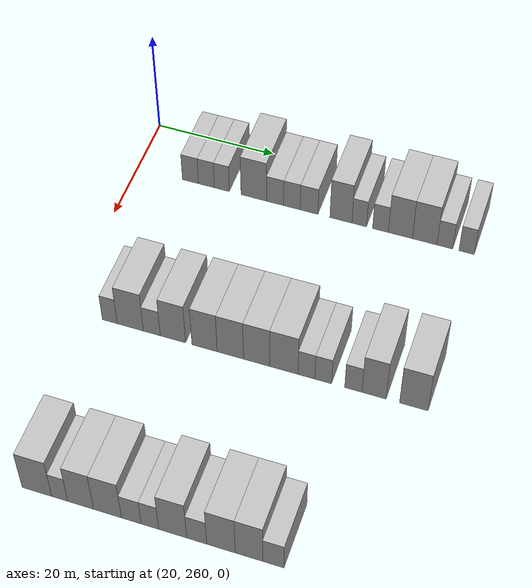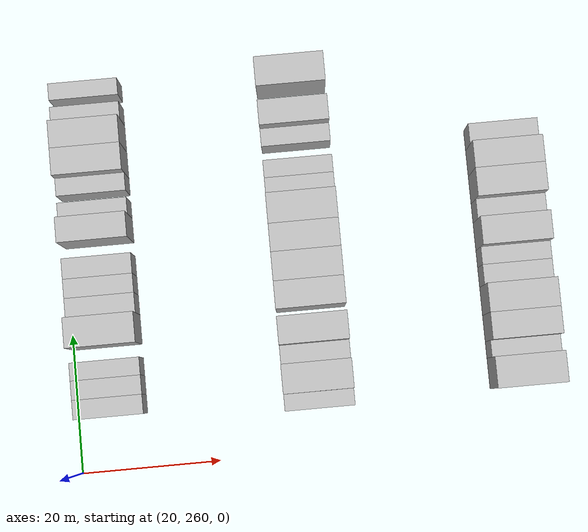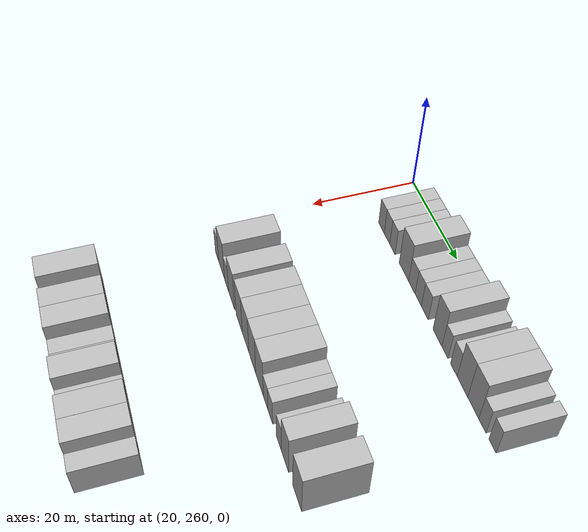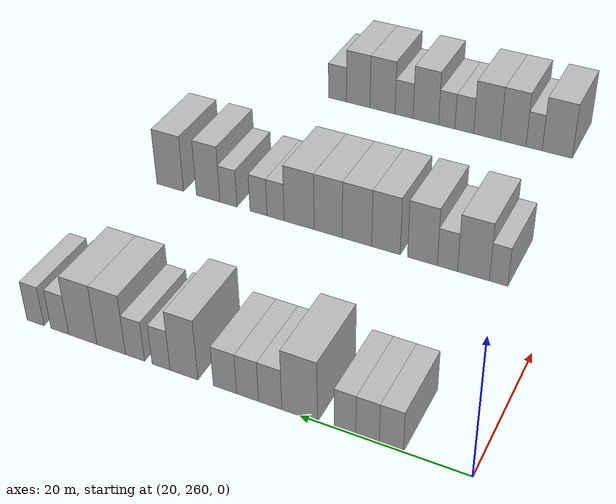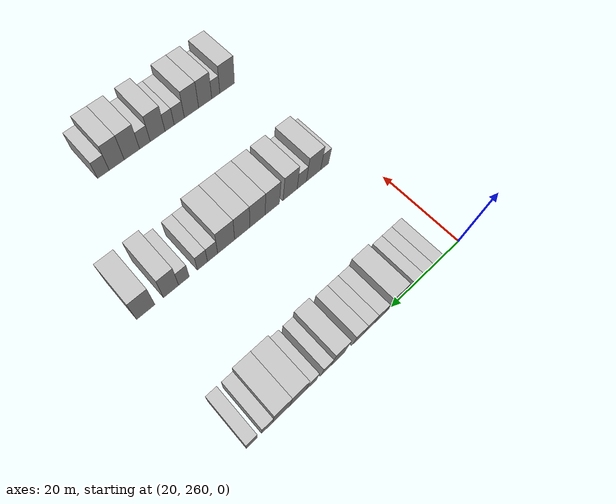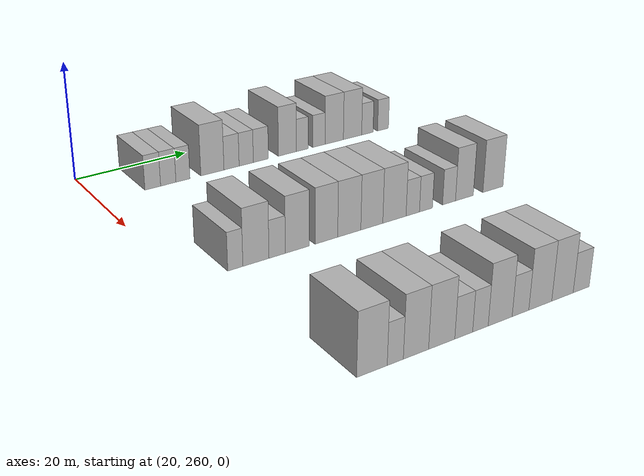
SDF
<sdf version="1.6">
 <world name="default">
  <model name="building_188">
   <static>1</static>
   <pose>25.0000 269.1883 0 0.000000 0.000000 0.000000</pose>
   <link name="link">
    <pose>0 0 3.00 0 0 0</pose>
    <collision name="collision"><geometry><box><size>10.0000 2.7673 6.0000</size></box></geometry></collision>
    <visual name="visual">
     <cast_shadows>0</cast_shadows>
     <geometry><box><size>10.0000 2.7673 6.0000</size></box></geometry>
     <material>
      <script>
       <uri>model://HANNAS_wall/materials/scripts</uri>
       <uri>model://HANNAS_wall/materials/textures</uri>
       <name>vrc/HANNAS_wall</name>
      </script>
     </material>
    </visual>
   </link>
  </model>
  <model name="building_189">
   <static>1</static>
   <pose>25.0000 271.9453 0 0.000000 0.000000 0.000000</pose>
   <link name="link">
    <pose>0 0 3.00 0 0 0</pose>
    <collision name="collision"><geometry><box><size>10.0000 2.7468 6.0000</size></box></geometry></collision>
    <visual name="visual">
     <cast_shadows>0</cast_shadows>
     <geometry><box><size>10.0000 2.7468 6.0000</size></box></geometry>
     <material>
      <script>
       <uri>model://HANNAS_wall/materials/scripts</uri>
       <uri>model://HANNAS_wall/materials/textures</uri>
       <name>vrc/HANNAS_wall</name>
      </script>
     </material>
    </visual>
   </link>
  </model>
  <model name="building_190">
   <static>1</static>
   <pose>25.0000 274.5946 0 0.000000 0.000000 0.000000</pose>
   <link name="link">
    <pose>0 0 3.00 0 0 0</pose>
    <collision name="collision"><geometry><box><size>10.0000 2.5517 6.0000</size></box></geometry></collision>
    <visual name="visual">
     <cast_shadows>0</cast_shadows>
     <geometry><box><size>10.0000 2.5517 6.0000</size></box></geometry>
     <material>
      <script>
       <uri>model://HANNAS_wall/materials/scripts</uri>
       <uri>model://HANNAS_wall/materials/textures</uri>
       <name>vrc/HANNAS_wall</name>
      </script>
     </material>
    </visual>
   </link>
  </model>
  <model name="building_191">
   <static>1</static>
   <pose>25.0000 280.0390 0 0.000000 0.000000 0.000000</pose>
   <link name="link">
    <pose>0 0 4.50 0 0 0</pose>
    <collision name="collision"><geometry><box><size>10.0000 4.3372 9.0000</size></box></geometry></collision>
    <visual name="visual">
     <cast_shadows>0</cast_shadows>
     <geometry><box><size>10.0000 4.3372 9.0000</size></box></geometry>
     <material>
      <script>
       <uri>model://HANNAS_wall/materials/scripts</uri>
       <uri>model://HANNAS_wall/materials/textures</uri>
       <name>vrc/HANNAS_wall</name>
      </script>
     </material>
    </visual>
   </link>
  </model>
  <model name="building_192">
   <static>1</static>
   <pose>25.0000 283.6564 0 0.000000 0.000000 0.000000</pose>
   <link name="link">
    <pose>0 0 3.00 0 0 0</pose>
    <collision name="collision"><geometry><box><size>10.0000 2.8976 6.0000</size></box></geometry></collision>
    <visual name="visual">
     <cast_shadows>0</cast_shadows>
     <geometry><box><size>10.0000 2.8976 6.0000</size></box></geometry>
     <material>
      <script>
       <uri>model://HANNAS_wall/materials/scripts</uri>
       <uri>model://HANNAS_wall/materials/textures</uri>
       <name>vrc/HANNAS_wall</name>
      </script>
     </material>
    </visual>
   </link>
  </model>
  <model name="building_193">
   <static>1</static>
   <pose>25.0000 286.4851 0 0.000000 0.000000 0.000000</pose>
   <link name="link">
    <pose>0 0 3.00 0 0 0</pose>
    <collision name="collision"><geometry><box><size>10.0000 2.7598 6.0000</size></box></geometry></collision>
    <visual name="visual">
     <cast_shadows>0</cast_shadows>
     <geometry><box><size>10.0000 2.7598 6.0000</size></box></geometry>
     <material>
      <script>
       <uri>model://HANNAS_wall/materials/scripts</uri>
       <uri>model://HANNAS_wall/materials/textures</uri>
       <name>vrc/HANNAS_wall</name>
      </script>
     </material>
    </visual>
   </link>
  </model>
  <model name="building_194">
   <static>1</static>
   <pose>25.0000 289.3492 0 0.000000 0.000000 0.000000</pose>
   <link name="link">
    <pose>0 0 3.00 0 0 0</pose>
    <collision name="collision"><geometry><box><size>10.0000 2.9684 6.0000</size></box></geometry></collision>
    <visual name="visual">
     <cast_shadows>0</cast_shadows>
     <geometry><box><size>10.0000 2.9684 6.0000</size></box></geometry>
     <material>
      <script>
       <uri>model://HANNAS_wall/materials/scripts</uri>
       <uri>model://HANNAS_wall/materials/textures</uri>
       <name>vrc/HANNAS_wall</name>
      </script>
     </material>
    </visual>
   </link>
  </model>
  <model name="building_195">
   <static>1</static>
   <pose>25.0000 294.6551 0 0.000000 0.000000 0.000000</pose>
   <link name="link">
    <pose>0 0 4.50 0 0 0</pose>
    <collision name="collision"><geometry><box><size>10.0000 3.6434 9.0000</size></box></geometry></collision>
    <visual name="visual">
     <cast_shadows>0</cast_shadows>
     <geometry><box><size>10.0000 3.6434 9.0000</size></box></geometry>
     <material>
      <script>
       <uri>model://HANNAS_wall/materials/scripts</uri>
       <uri>model://HANNAS_wall/materials/textures</uri>
       <name>vrc/HANNAS_wall</name>
      </script>
     </material>
    </visual>
   </link>
  </model>
  <model name="building_196">
   <static>1</static>
   <pose>25.0000 297.6793 0 0.000000 0.000000 0.000000</pose>
   <link name="link">
    <pose>0 0 3.00 0 0 0</pose>
    <collision name="collision"><geometry><box><size>10.0000 2.4050 6.0000</size></box></geometry></collision>
    <visual name="visual">
     <cast_shadows>0</cast_shadows>
     <geometry><box><size>10.0000 2.4050 6.0000</size></box></geometry>
     <material>
      <script>
       <uri>model://HANNAS_wall/materials/scripts</uri>
       <uri>model://HANNAS_wall/materials/textures</uri>
       <name>vrc/HANNAS_wall</name>
      </script>
     </material>
    </visual>
   </link>
  </model>
  <model name="building_197">
   <static>1</static>
   <pose>25.0000 301.1719 0 0.000000 0.000000 0.000000</pose>
   <link name="link">
    <pose>0 0 3.00 0 0 0</pose>
    <collision name="collision"><geometry><box><size>10.0000 2.5803 6.0000</size></box></geometry></collision>
    <visual name="visual">
     <cast_shadows>0</cast_shadows>
     <geometry><box><size>10.0000 2.5803 6.0000</size></box></geometry>
     <material>
      <script>
       <uri>model://HANNAS_wall/materials/scripts</uri>
       <uri>model://HANNAS_wall/materials/textures</uri>
       <name>vrc/HANNAS_wall</name>
      </script>
     </material>
    </visual>
   </link>
  </model>
  <model name="building_198">
   <static>1</static>
   <pose>25.0000 304.4214 0 0.000000 0.000000 0.000000</pose>
   <link name="link">
    <pose>0 0 4.50 0 0 0</pose>
    <collision name="collision"><geometry><box><size>10.0000 3.9188 9.0000</size></box></geometry></collision>
    <visual name="visual">
     <cast_shadows>0</cast_shadows>
     <geometry><box><size>10.0000 3.9188 9.0000</size></box></geometry>
     <material>
      <script>
       <uri>model://HANNAS_wall/materials/scripts</uri>
       <uri>model://HANNAS_wall/materials/textures</uri>
       <name>vrc/HANNAS_wall</name>
      </script>
     </material>
    </visual>
   </link>
  </model>
  <model name="building_199">
   <static>1</static>
   <pose>25.0000 308.3749 0 0.000000 0.000000 0.000000</pose>
   <link name="link">
    <pose>0 0 4.50 0 0 0</pose>
    <collision name="collision"><geometry><box><size>10.0000 3.9881 9.0000</size></box></geometry></collision>
    <visual name="visual">
     <cast_shadows>0</cast_shadows>
     <geometry><box><size>10.0000 3.9881 9.0000</size></box></geometry>
     <material>
      <script>
       <uri>model://HANNAS_wall/materials/scripts</uri>
       <uri>model://HANNAS_wall/materials/textures</uri>
       <name>vrc/HANNAS_wall</name>
      </script>
     </material>
    </visual>
   </link>
  </model>
  <model name="building_200">
   <static>1</static>
   <pose>25.0000 311.6359 0 0.000000 0.000000 0.000000</pose>
   <link name="link">
    <pose>0 0 3.00 0 0 0</pose>
    <collision name="collision"><geometry><box><size>10.0000 2.5339 6.0000</size></box></geometry></collision>
    <visual name="visual">
     <cast_shadows>0</cast_shadows>
     <geometry><box><size>10.0000 2.5339 6.0000</size></box></geometry>
     <material>
      <script>
       <uri>model://HANNAS_wall/materials/scripts</uri>
       <uri>model://HANNAS_wall/materials/textures</uri>
       <name>vrc/HANNAS_wall</name>
      </script>
     </material>
    </visual>
   </link>
  </model>
  <model name="building_201">
   <static>1</static>
   <pose>25.0000 315.1301 0 0.000000 0.000000 0.000000</pose>
   <link name="link">
    <pose>0 0 3.00 0 0 0</pose>
    <collision name="collision"><geometry><box><size>10.0000 2.4544 6.0000</size></box></geometry></collision>
    <visual name="visual">
     <cast_shadows>0</cast_shadows>
     <geometry><box><size>10.0000 2.4544 6.0000</size></box></geometry>
     <material>
      <script>
       <uri>model://HANNAS_wall/materials/scripts</uri>
       <uri>model://HANNAS_wall/materials/textures</uri>
       <name>vrc/HANNAS_wall</name>
      </script>
     </material>
    </visual>
   </link>
  </model>
  <model name="building_430">
   <static>1</static>
   <pose>55.0000 267.5002 0 0.000000 0.000000 0.000000</pose>
   <link name="link">
    <pose>0 0 3.00 0 0 0</pose>
    <collision name="collision"><geometry><box><size>10.0000 2.4039 6.0000</size></box></geometry></collision>
    <visual name="visual">
     <cast_shadows>0</cast_shadows>
     <geometry><box><size>10.0000 2.4039 6.0000</size></box></geometry>
     <material>
      <script>
       <uri>model://HANNAS_wall/materials/scripts</uri>
       <uri>model://HANNAS_wall/materials/textures</uri>
       <name>vrc/HANNAS_wall</name>
      </script>
     </material>
    </visual>
   </link>
  </model>
  <model name="building_431">
   <static>1</static>
   <pose>55.0000 270.8150 0 0.000000 0.000000 0.000000</pose>
   <link name="link">
    <pose>0 0 4.50 0 0 0</pose>
    <collision name="collision"><geometry><box><size>10.0000 4.2258 9.0000</size></box></geometry></collision>
    <visual name="visual">
     <cast_shadows>0</cast_shadows>
     <geometry><box><size>10.0000 4.2258 9.0000</size></box></geometry>
     <material>
      <script>
       <uri>model://HANNAS_wall/materials/scripts</uri>
       <uri>model://HANNAS_wall/materials/textures</uri>
       <name>vrc/HANNAS_wall</name>
      </script>
     </material>
    </visual>
   </link>
  </model>
  <model name="building_432">
   <static>1</static>
   <pose>55.0000 274.2824 0 0.000000 0.000000 0.000000</pose>
   <link name="link">
    <pose>0 0 3.00 0 0 0</pose>
    <collision name="collision"><geometry><box><size>10.0000 2.7090 6.0000</size></box></geometry></collision>
    <visual name="visual">
     <cast_shadows>0</cast_shadows>
     <geometry><box><size>10.0000 2.7090 6.0000</size></box></geometry>
     <material>
      <script>
       <uri>model://HANNAS_wall/materials/scripts</uri>
       <uri>model://HANNAS_wall/materials/textures</uri>
       <name>vrc/HANNAS_wall</name>
      </script>
     </material>
    </visual>
   </link>
  </model>
  <model name="building_433">
   <static>1</static>
   <pose>55.0000 277.6571 0 0.000000 0.000000 0.000000</pose>
   <link name="link">
    <pose>0 0 4.50 0 0 0</pose>
    <collision name="collision"><geometry><box><size>10.0000 4.0405 9.0000</size></box></geometry></collision>
    <visual name="visual">
     <cast_shadows>0</cast_shadows>
     <geometry><box><size>10.0000 4.0405 9.0000</size></box></geometry>
     <material>
      <script>
       <uri>model://HANNAS_wall/materials/scripts</uri>
       <uri>model://HANNAS_wall/materials/textures</uri>
       <name>vrc/HANNAS_wall</name>
      </script>
     </material>
    </visual>
   </link>
  </model>
  <model name="building_434">
   <static>1</static>
   <pose>55.0000 282.6655 0 0.000000 0.000000 0.000000</pose>
   <link name="link">
    <pose>0 0 4.50 0 0 0</pose>
    <collision name="collision"><geometry><box><size>10.0000 3.9763 9.0000</size></box></geometry></collision>
    <visual name="visual">
     <cast_shadows>0</cast_shadows>
     <geometry><box><size>10.0000 3.9763 9.0000</size></box></geometry>
     <material>
      <script>
       <uri>model://HANNAS_wall/materials/scripts</uri>
       <uri>model://HANNAS_wall/materials/textures</uri>
       <name>vrc/HANNAS_wall</name>
      </script>
     </material>
    </visual>
   </link>
  </model>
  <model name="building_435">
   <static>1</static>
   <pose>55.0000 286.7268 0 0.000000 0.000000 0.000000</pose>
   <link name="link">
    <pose>0 0 4.50 0 0 0</pose>
    <collision name="collision"><geometry><box><size>10.0000 4.1462 9.0000</size></box></geometry></collision>
    <visual name="visual">
     <cast_shadows>0</cast_shadows>
     <geometry><box><size>10.0000 4.1462 9.0000</size></box></geometry>
     <material>
      <script>
       <uri>model://HANNAS_wall/materials/scripts</uri>
       <uri>model://HANNAS_wall/materials/textures</uri>
       <name>vrc/HANNAS_wall</name>
      </script>
     </material>
    </visual>
   </link>
  </model>
  <model name="building_436">
   <static>1</static>
   <pose>55.0000 290.8235 0 0.000000 0.000000 0.000000</pose>
   <link name="link">
    <pose>0 0 4.50 0 0 0</pose>
    <collision name="collision"><geometry><box><size>10.0000 4.0472 9.0000</size></box></geometry></collision>
    <visual name="visual">
     <cast_shadows>0</cast_shadows>
     <geometry><box><size>10.0000 4.0472 9.0000</size></box></geometry>
     <material>
      <script>
       <uri>model://HANNAS_wall/materials/scripts</uri>
       <uri>model://HANNAS_wall/materials/textures</uri>
       <name>vrc/HANNAS_wall</name>
      </script>
     </material>
    </visual>
   </link>
  </model>
  <model name="building_437">
   <static>1</static>
   <pose>55.0000 295.0451 0 0.000000 0.000000 0.000000</pose>
   <link name="link">
    <pose>0 0 4.50 0 0 0</pose>
    <collision name="collision"><geometry><box><size>10.0000 4.3959 9.0000</size></box></geometry></collision>
    <visual name="visual">
     <cast_shadows>0</cast_shadows>
     <geometry><box><size>10.0000 4.3959 9.0000</size></box></geometry>
     <material>
      <script>
       <uri>model://HANNAS_wall/materials/scripts</uri>
       <uri>model://HANNAS_wall/materials/textures</uri>
       <name>vrc/HANNAS_wall</name>
      </script>
     </material>
    </visual>
   </link>
  </model>
  <model name="building_438">
   <static>1</static>
   <pose>55.0000 298.5359 0 0.000000 0.000000 0.000000</pose>
   <link name="link">
    <pose>0 0 3.00 0 0 0</pose>
    <collision name="collision"><geometry><box><size>10.0000 2.5858 6.0000</size></box></geometry></collision>
    <visual name="visual">
     <cast_shadows>0</cast_shadows>
     <geometry><box><size>10.0000 2.5858 6.0000</size></box></geometry>
     <material>
      <script>
       <uri>model://HANNAS_wall/materials/scripts</uri>
       <uri>model://HANNAS_wall/materials/textures</uri>
       <name>vrc/HANNAS_wall</name>
      </script>
     </material>
    </visual>
   </link>
  </model>
  <model name="building_439">
   <static>1</static>
   <pose>55.0000 301.1053 0 0.000000 0.000000 0.000000</pose>
   <link name="link">
    <pose>0 0 3.00 0 0 0</pose>
    <collision name="collision"><geometry><box><size>10.0000 2.5530 6.0000</size></box></geometry></collision>
    <visual name="visual">
     <cast_shadows>0</cast_shadows>
     <geometry><box><size>10.0000 2.5530 6.0000</size></box></geometry>
     <material>
      <script>
       <uri>model://HANNAS_wall/materials/scripts</uri>
       <uri>model://HANNAS_wall/materials/textures</uri>
       <name>vrc/HANNAS_wall</name>
      </script>
     </material>
    </visual>
   </link>
  </model>
  <model name="building_440">
   <static>1</static>
   <pose>55.0000 305.6864 0 0.000000 0.000000 0.000000</pose>
   <link name="link">
    <pose>0 0 3.00 0 0 0</pose>
    <collision name="collision"><geometry><box><size>10.0000 2.6091 6.0000</size></box></geometry></collision>
    <visual name="visual">
     <cast_shadows>0</cast_shadows>
     <geometry><box><size>10.0000 2.6091 6.0000</size></box></geometry>
     <material>
      <script>
       <uri>model://HANNAS_wall/materials/scripts</uri>
       <uri>model://HANNAS_wall/materials/textures</uri>
       <name>vrc/HANNAS_wall</name>
      </script>
     </material>
    </visual>
   </link>
  </model>
  <model name="building_441">
   <static>1</static>
   <pose>55.0000 308.8178 0 0.000000 0.000000 0.000000</pose>
   <link name="link">
    <pose>0 0 4.50 0 0 0</pose>
    <collision name="collision"><geometry><box><size>10.0000 3.6537 9.0000</size></box></geometry></collision>
    <visual name="visual">
     <cast_shadows>0</cast_shadows>
     <geometry><box><size>10.0000 3.6537 9.0000</size></box></geometry>
     <material>
      <script>
       <uri>model://HANNAS_wall/materials/scripts</uri>
       <uri>model://HANNAS_wall/materials/textures</uri>
       <name>vrc/HANNAS_wall</name>
      </script>
     </material>
    </visual>
   </link>
  </model>
  <model name="building_442">
   <static>1</static>
   <pose>55.0000 314.7757 0 0.000000 0.000000 0.000000</pose>
   <link name="link">
    <pose>0 0 4.50 0 0 0</pose>
    <collision name="collision"><geometry><box><size>10.0000 4.2621 9.0000</size></box></geometry></collision>
    <visual name="visual">
     <cast_shadows>0</cast_shadows>
     <geometry><box><size>10.0000 4.2621 9.0000</size></box></geometry>
     <material>
      <script>
       <uri>model://HANNAS_wall/materials/scripts</uri>
       <uri>model://HANNAS_wall/materials/textures</uri>
       <name>vrc/HANNAS_wall</name>
      </script>
     </material>
    </visual>
   </link>
  </model>
  <model name="building_668">
   <static>1</static>
   <pose>85.0000 269.0358 0 0.000000 0.000000 0.000000</pose>
   <link name="link">
    <pose>0 0 4.50 0 0 0</pose>
    <collision name="collision"><geometry><box><size>10.0000 4.4464 9.0000</size></box></geometry></collision>
    <visual name="visual">
     <cast_shadows>0</cast_shadows>
     <geometry><box><size>10.0000 4.4464 9.0000</size></box></geometry>
     <material>
      <script>
       <uri>model://HANNAS_wall/materials/scripts</uri>
       <uri>model://HANNAS_wall/materials/textures</uri>
       <name>vrc/HANNAS_wall</name>
      </script>
     </material>
    </visual>
   </link>
  </model>
  <model name="building_669">
   <static>1</static>
   <pose>85.0000 272.4611 0 0.000000 0.000000 0.000000</pose>
   <link name="link">
    <pose>0 0 3.00 0 0 0</pose>
    <collision name="collision"><geometry><box><size>10.0000 2.4040 6.0000</size></box></geometry></collision>
    <visual name="visual">
     <cast_shadows>0</cast_shadows>
     <geometry><box><size>10.0000 2.4040 6.0000</size></box></geometry>
     <material>
      <script>
       <uri>model://HANNAS_wall/materials/scripts</uri>
       <uri>model://HANNAS_wall/materials/textures</uri>
       <name>vrc/HANNAS_wall</name>
      </script>
     </material>
    </visual>
   </link>
  </model>
  <model name="building_670">
   <static>1</static>
   <pose>85.0000 275.5911 0 0.000000 0.000000 0.000000</pose>
   <link name="link">
    <pose>0 0 4.50 0 0 0</pose>
    <collision name="collision"><geometry><box><size>10.0000 3.8561 9.0000</size></box></geometry></collision>
    <visual name="visual">
     <cast_shadows>0</cast_shadows>
     <geometry><box><size>10.0000 3.8561 9.0000</size></box></geometry>
     <material>
      <script>
       <uri>model://HANNAS_wall/materials/scripts</uri>
       <uri>model://HANNAS_wall/materials/textures</uri>
       <name>vrc/HANNAS_wall</name>
      </script>
     </material>
    </visual>
   </link>
  </model>
  <model name="building_671">
   <static>1</static>
   <pose>85.0000 279.5836 0 0.000000 0.000000 0.000000</pose>
   <link name="link">
    <pose>0 0 4.50 0 0 0</pose>
    <collision name="collision"><geometry><box><size>10.0000 4.1289 9.0000</size></box></geometry></collision>
    <visual name="visual">
     <cast_shadows>0</cast_shadows>
     <geometry><box><size>10.0000 4.1289 9.0000</size></box></geometry>
     <material>
      <script>
       <uri>model://HANNAS_wall/materials/scripts</uri>
       <uri>model://HANNAS_wall/materials/textures</uri>
       <name>vrc/HANNAS_wall</name>
      </script>
     </material>
    </visual>
   </link>
  </model>
  <model name="building_672">
   <static>1</static>
   <pose>85.0000 283.0912 0 0.000000 0.000000 0.000000</pose>
   <link name="link">
    <pose>0 0 3.00 0 0 0</pose>
    <collision name="collision"><geometry><box><size>10.0000 2.8863 6.0000</size></box></geometry></collision>
    <visual name="visual">
     <cast_shadows>0</cast_shadows>
     <geometry><box><size>10.0000 2.8863 6.0000</size></box></geometry>
     <material>
      <script>
       <uri>model://HANNAS_wall/materials/scripts</uri>
       <uri>model://HANNAS_wall/materials/textures</uri>
       <name>vrc/HANNAS_wall</name>
      </script>
     </material>
    </visual>
   </link>
  </model>
  <model name="building_673">
   <static>1</static>
   <pose>85.0000 285.8148 0 0.000000 0.000000 0.000000</pose>
   <link name="link">
    <pose>0 0 3.00 0 0 0</pose>
    <collision name="collision"><geometry><box><size>10.0000 2.5607 6.0000</size></box></geometry></collision>
    <visual name="visual">
     <cast_shadows>0</cast_shadows>
     <geometry><box><size>10.0000 2.5607 6.0000</size></box></geometry>
     <material>
      <script>
       <uri>model://HANNAS_wall/materials/scripts</uri>
       <uri>model://HANNAS_wall/materials/textures</uri>
       <name>vrc/HANNAS_wall</name>
      </script>
     </material>
    </visual>
   </link>
  </model>
  <model name="building_674">
   <static>1</static>
   <pose>85.0000 289.1225 0 0.000000 0.000000 0.000000</pose>
   <link name="link">
    <pose>0 0 4.50 0 0 0</pose>
    <collision name="collision"><geometry><box><size>10.0000 4.0548 9.0000</size></box></geometry></collision>
    <visual name="visual">
     <cast_shadows>0</cast_shadows>
     <geometry><box><size>10.0000 4.0548 9.0000</size></box></geometry>
     <material>
      <script>
       <uri>model://HANNAS_wall/materials/scripts</uri>
       <uri>model://HANNAS_wall/materials/textures</uri>
       <name>vrc/HANNAS_wall</name>
      </script>
     </material>
    </visual>
   </link>
  </model>
  <model name="building_675">
   <static>1</static>
   <pose>85.0000 292.5908 0 0.000000 0.000000 0.000000</pose>
   <link name="link">
    <pose>0 0 3.00 0 0 0</pose>
    <collision name="collision"><geometry><box><size>10.0000 2.8816 6.0000</size></box></geometry></collision>
    <visual name="visual">
     <cast_shadows>0</cast_shadows>
     <geometry><box><size>10.0000 2.8816 6.0000</size></box></geometry>
     <material>
      <script>
       <uri>model://HANNAS_wall/materials/scripts</uri>
       <uri>model://HANNAS_wall/materials/textures</uri>
       <name>vrc/HANNAS_wall</name>
      </script>
     </material>
    </visual>
   </link>
  </model>
  <model name="building_676">
   <static>1</static>
   <pose>85.0000 296.0714 0 0.000000 0.000000 0.000000</pose>
   <link name="link">
    <pose>0 0 4.50 0 0 0</pose>
    <collision name="collision"><geometry><box><size>10.0000 4.0797 9.0000</size></box></geometry></collision>
    <visual name="visual">
     <cast_shadows>0</cast_shadows>
     <geometry><box><size>10.0000 4.0797 9.0000</size></box></geometry>
     <material>
      <script>
       <uri>model://HANNAS_wall/materials/scripts</uri>
       <uri>model://HANNAS_wall/materials/textures</uri>
       <name>vrc/HANNAS_wall</name>
      </script>
     </material>
    </visual>
   </link>
  </model>
  <model name="building_677">
   <static>1</static>
   <pose>85.0000 300.0688 0 0.000000 0.000000 0.000000</pose>
   <link name="link">
    <pose>0 0 4.50 0 0 0</pose>
    <collision name="collision"><geometry><box><size>10.0000 3.9149 9.0000</size></box></geometry></collision>
    <visual name="visual">
     <cast_shadows>0</cast_shadows>
     <geometry><box><size>10.0000 3.9149 9.0000</size></box></geometry>
     <material>
      <script>
       <uri>model://HANNAS_wall/materials/scripts</uri>
       <uri>model://HANNAS_wall/materials/textures</uri>
       <name>vrc/HANNAS_wall</name>
      </script>
     </material>
    </visual>
   </link>
  </model>
  <model name="building_678">
   <static>1</static>
   <pose>85.0000 303.5215 0 0.000000 0.000000 0.000000</pose>
   <link name="link">
    <pose>0 0 3.00 0 0 0</pose>
    <collision name="collision"><geometry><box><size>10.0000 2.9906 6.0000</size></box></geometry></collision>
    <visual name="visual">
     <cast_shadows>0</cast_shadows>
     <geometry><box><size>10.0000 2.9906 6.0000</size></box></geometry>
     <material>
      <script>
       <uri>model://HANNAS_wall/materials/scripts</uri>
       <uri>model://HANNAS_wall/materials/textures</uri>
       <name>vrc/HANNAS_wall</name>
      </script>
     </material>
    </visual>
   </link>
  </model>
 </world>
</sdf>
